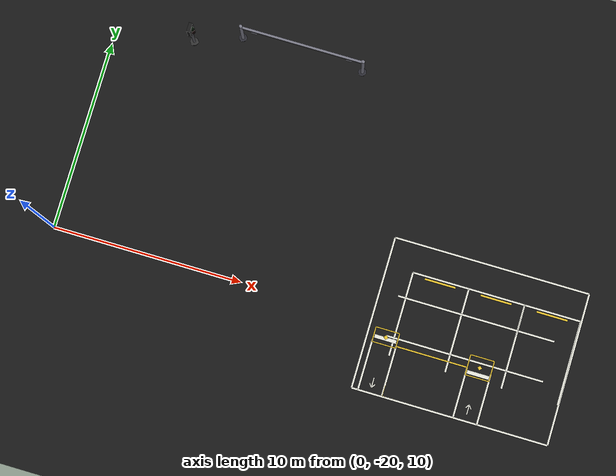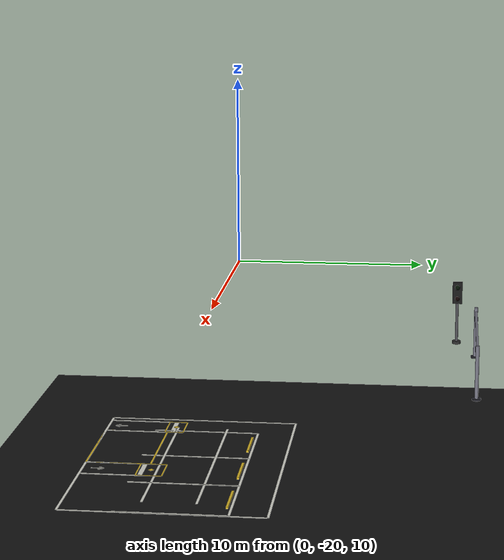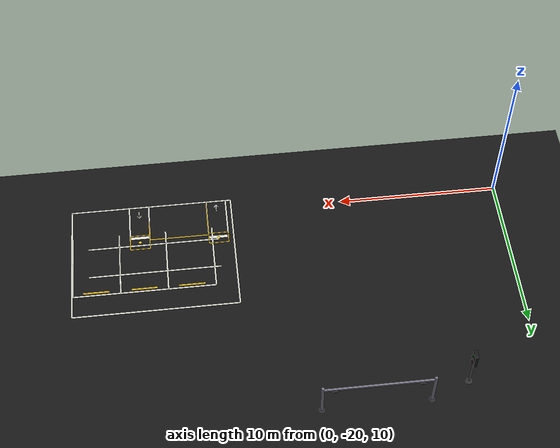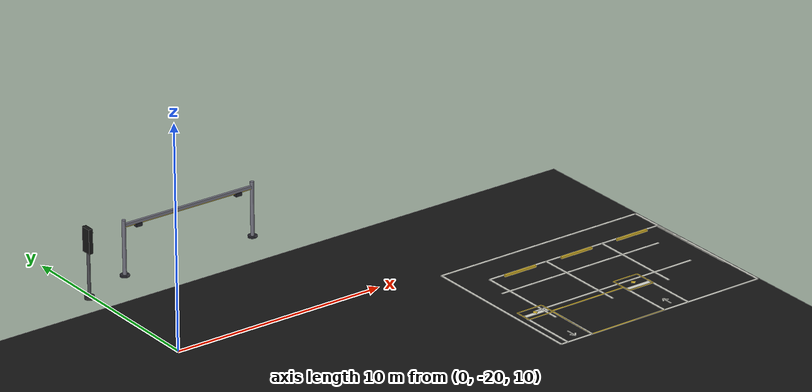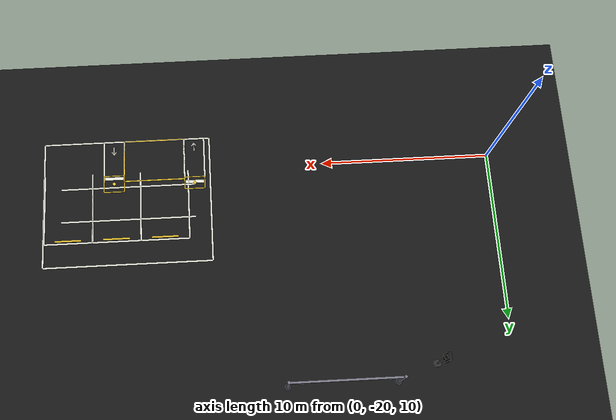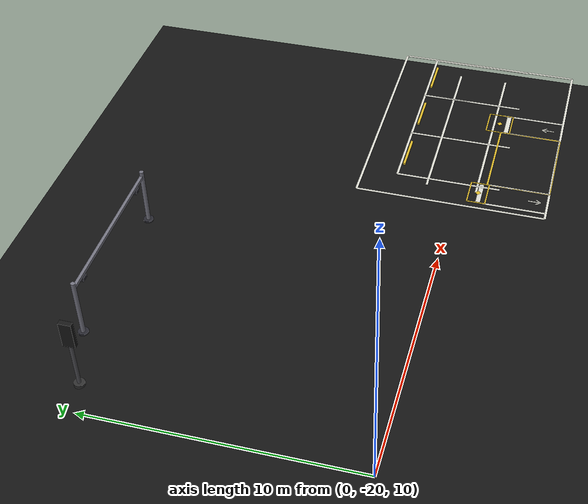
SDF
<sdf version="1.6">
 <world name="v2x_city_scene">
  <model name="ground_plane">
   <static>true</static>
   <link name="link">
    <collision name="collision">
     <geometry><plane><normal>0 0 1</normal><size>200 200</size></plane></geometry>
    </collision>
    <visual name="visual">
     <geometry><plane><normal>0 0 1</normal><size>200 200</size></plane></geometry>
     <material>
      <ambient>0.05 0.05 0.05 1</ambient>
      <diffuse>0.08 0.08 0.08 1</diffuse>
      <specular>0.0 0.0 0.0 1</specular>
     </material>
    </visual>
   </link>
  </model>
  <model name="tl_j1_ns_ped">
   <static>true</static>
   <pose>3.6 -8.0 6.7 0 0 1.5708</pose>
   <link name="link">
    <visual name="base_visual">
     <pose>0 0 0.07 0 0 0</pose>
     <geometry><cylinder><radius>0.22</radius><length>0.14</length></cylinder></geometry>
     <material><ambient>0.10 0.10 0.10 1</ambient><diffuse>0.18 0.18 0.18 1</diffuse></material>
    </visual>
    <visual name="pole_visual">
     <pose>0 0 1.45 0 0 0</pose>
     <geometry><cylinder><radius>0.075</radius><length>2.80</length></cylinder></geometry>
     <material><ambient>0.16 0.16 0.16 1</ambient><diffuse>0.30 0.30 0.32 1</diffuse></material>
    </visual>
    <visual name="housing_visual">
     <pose>0 0.02 2.75 0 0 0</pose>
     <geometry><box><size>0.50 0.20 1.15</size></box></geometry>
     <material><ambient>0.04 0.04 0.04 1</ambient><diffuse>0.09 0.09 0.09 1</diffuse></material>
    </visual>
    <visual name="red_hand">
     <pose>0 -0.11 2.45 0 0 0</pose>
     <geometry><sphere><radius>0.13</radius></sphere></geometry>
     <material><ambient>0.05 0 0 1</ambient><diffuse>0.05 0 0 1</diffuse><emissive>0.05 0 0 1</emissive></material>
    </visual>
    <visual name="green_walking">
     <pose>0 -0.11 3.05 0 0 0</pose>
     <geometry><sphere><radius>0.13</radius></sphere></geometry>
     <material><ambient>0 0.05 0 1</ambient><diffuse>0 0.05 0 1</diffuse><emissive>0 0.05 0 1</emissive></material>
    </visual>
    <collision name="pole_collision">
     <pose>0 0 1.45 0 0 0</pose>
     <geometry><cylinder><radius>0.10</radius><length>2.80</length></cylinder></geometry>
    </collision>
   </link>
   <plugin name="traffic_light_ped" filename="libv2x_traffic_light.so">
    <state_topic>traffic_light/J1_ns/pedestrian</state_topic>
    <link_name>link</link_name>
    <is_pedestrian>true</is_pedestrian>
   </plugin>
  </model>
  <model name="parking_stripes">
   <static>true</static>
   <pose>11.1500 -9.6500 6.7000 0.0000 0.0000 0.0000</pose>
   <link name="link">
    <visual name="s001">
     <pose>11.1500 -13.8000 0.0210 0 0 0.0000</pose>
     <geometry><box><size>10.7000 0.1000 0.0120</size></box></geometry>
     <material>
      <ambient>0.55 0.55 0.52 1</ambient>
      <diffuse>0.86 0.86 0.82 1</diffuse>
      <specular>0 0 0 1</specular>
      <emissive>0 0 0 1</emissive>
     </material>
    </visual>
    <visual name="s002">
     <pose>11.1500 -5.5000 0.0210 0 0 0.0000</pose>
     <geometry><box><size>10.7000 0.1000 0.0120</size></box></geometry>
     <material>
      <ambient>0.55 0.55 0.52 1</ambient>
      <diffuse>0.86 0.86 0.82 1</diffuse>
      <specular>0 0 0 1</specular>
      <emissive>0 0 0 1</emissive>
     </material>
    </visual>
    <visual name="s003">
     <pose>5.8000 -9.6500 0.0210 0 0 1.5708</pose>
     <geometry><box><size>8.3000 0.1000 0.0120</size></box></geometry>
     <material>
      <ambient>0.55 0.55 0.52 1</ambient>
      <diffuse>0.86 0.86 0.82 1</diffuse>
      <specular>0 0 0 1</specular>
      <emissive>0 0 0 1</emissive>
     </material>
    </visual>
    <visual name="s004">
     <pose>16.5000 -9.6500 0.0210 0 0 1.5708</pose>
     <geometry><box><size>8.3000 0.1000 0.0120</size></box></geometry>
     <material>
      <ambient>0.55 0.55 0.52 1</ambient>
      <diffuse>0.86 0.86 0.82 1</diffuse>
      <specular>0 0 0 1</specular>
      <emissive>0 0 0 1</emissive>
     </material>
    </visual>
    <visual name="s005">
     <pose>11.1000 -10.6500 0.0210 0 0 0.0000</pose>
     <geometry><box><size>8.6000 0.1000 0.0120</size></box></geometry>
     <material>
      <ambient>0.55 0.55 0.52 1</ambient>
      <diffuse>0.86 0.86 0.82 1</diffuse>
      <specular>0 0 0 1</specular>
      <emissive>0 0 0 1</emissive>
     </material>
    </visual>
    <visual name="s006">
     <pose>11.1000 -8.4500 0.0210 0 0 0.0000</pose>
     <geometry><box><size>8.6000 0.1000 0.0120</size></box></geometry>
     <material>
      <ambient>0.55 0.55 0.52 1</ambient>
      <diffuse>0.86 0.86 0.82 1</diffuse>
      <specular>0 0 0 1</specular>
      <emissive>0 0 0 1</emissive>
     </material>
    </visual>
    <visual name="s007">
     <pose>11.3500 -12.4250 0.0210 0 0 1.5708</pose>
     <geometry><box><size>2.7500 0.1000 0.0120</size></box></geometry>
     <material>
      <ambient>0.55 0.55 0.52 1</ambient>
      <diffuse>0.86 0.86 0.82 1</diffuse>
      <specular>0 0 0 1</specular>
      <emissive>0 0 0 1</emissive>
     </material>
    </visual>
    <visual name="s008">
     <pose>12.6500 -12.4250 0.0210 0 0 1.5708</pose>
     <geometry><box><size>2.7500 0.1000 0.0120</size></box></geometry>
     <material>
      <ambient>0.55 0.55 0.52 1</ambient>
      <diffuse>0.86 0.86 0.82 1</diffuse>
      <specular>0 0 0 1</specular>
      <emissive>0 0 0 1</emissive>
     </material>
    </visual>
    <visual name="s009">
     <pose>6.1500 -12.4250 0.0210 0 0 1.5708</pose>
     <geometry><box><size>2.7500 0.1000 0.0120</size></box></geometry>
     <material>
      <ambient>0.55 0.55 0.52 1</ambient>
      <diffuse>0.86 0.86 0.82 1</diffuse>
      <specular>0 0 0 1</specular>
      <emissive>0 0 0 1</emissive>
     </material>
    </visual>
    <visual name="s010">
     <pose>7.4500 -12.4250 0.0210 0 0 1.5708</pose>
     <geometry><box><size>2.7500 0.1000 0.0120</size></box></geometry>
     <material>
      <ambient>0.55 0.55 0.52 1</ambient>
      <diffuse>0.86 0.86 0.82 1</diffuse>
      <specular>0 0 0 1</specular>
      <emissive>0 0 0 1</emissive>
     </material>
    </visual>
    <visual name="s011">
     <pose>9.4000 -13.8000 0.0210 0 0 0.0000</pose>
     <geometry><box><size>3.9000 0.0800 0.0120</size></box></geometry>
     <material>
      <ambient>0.55 0.46 0.10 1</ambient>
      <diffuse>0.86 0.72 0.16 1</diffuse>
      <specular>0 0 0 1</specular>
      <emissive>0 0 0 1</emissive>
     </material>
    </visual>
    <visual name="s012">
     <pose>9.4000 -11.0500 0.0210 0 0 0.0000</pose>
     <geometry><box><size>3.9000 0.0800 0.0120</size></box></geometry>
     <material>
      <ambient>0.55 0.46 0.10 1</ambient>
      <diffuse>0.86 0.72 0.16 1</diffuse>
      <specular>0 0 0 1</specular>
      <emissive>0 0 0 1</emissive>
     </material>
    </visual>
    <visual name="s013">
     <pose>7.4500 -12.4250 0.0210 0 0 1.5708</pose>
     <geometry><box><size>2.7500 0.0800 0.0120</size></box></geometry>
     <material>
      <ambient>0.55 0.46 0.10 1</ambient>
      <diffuse>0.86 0.72 0.16 1</diffuse>
      <specular>0 0 0 1</specular>
      <emissive>0 0 0 1</emissive>
     </material>
    </visual>
    <visual name="s014">
     <pose>11.3500 -12.4250 0.0210 0 0 1.5708</pose>
     <geometry><box><size>2.7500 0.0800 0.0120</size></box></geometry>
     <material>
      <ambient>0.55 0.46 0.10 1</ambient>
      <diffuse>0.86 0.72 0.16 1</diffuse>
      <specular>0 0 0 1</specular>
      <emissive>0 0 0 1</emissive>
     </material>
    </visual>
    <visual name="s015">
     <pose>7.2250 -9.3300 0.0210 0 0 1.5708</pose>
     <geometry><box><size>4.6000 0.1000 0.0120</size></box></geometry>
     <material>
      <ambient>0.55 0.55 0.52 1</ambient>
      <diffuse>0.86 0.86 0.82 1</diffuse>
      <specular>0 0 0 1</specular>
      <emissive>0 0 0 1</emissive>
     </material>
    </visual>
    <visual name="s016">
     <pose>10.3050 -9.3300 0.0210 0 0 1.5708</pose>
     <geometry><box><size>4.6000 0.1000 0.0120</size></box></geometry>
     <material>
      <ambient>0.55 0.55 0.52 1</ambient>
      <diffuse>0.86 0.86 0.82 1</diffuse>
      <specular>0 0 0 1</specular>
      <emissive>0 0 0 1</emissive>
     </material>
    </visual>
    <visual name="s017">
     <pose>8.7650 -7.0300 0.0210 0 0 0.0000</pose>
     <geometry><box><size>3.0800 0.1000 0.0120</size></box></geometry>
     <material>
      <ambient>0.55 0.55 0.52 1</ambient>
      <diffuse>0.86 0.86 0.82 1</diffuse>
      <specular>0 0 0 1</specular>
      <emissive>0 0 0 1</emissive>
     </material>
    </visual>
    <visual name="s018">
     <pose>8.7650 -7.1900 0.0600 0 0 0.0000</pose>
     <geometry><box><size>1.6940 0.1000 0.0900</size></box></geometry>
     <material>
      <ambient>0.55 0.46 0.10 1</ambient>
      <diffuse>0.86 0.72 0.16 1</diffuse>
      <specular>0 0 0 1</specular>
      <emissive>0 0 0 1</emissive>
     </material>
    </visual>
    <visual name="s019">
     <pose>10.3050 -9.3300 0.0210 0 0 1.5708</pose>
     <geometry><box><size>4.6000 0.1000 0.0120</size></box></geometry>
     <material>
      <ambient>0.55 0.55 0.52 1</ambient>
      <diffuse>0.86 0.86 0.82 1</diffuse>
      <specular>0 0 0 1</specular>
      <emissive>0 0 0 1</emissive>
     </material>
    </visual>
    <visual name="s020">
     <pose>13.3750 -9.3300 0.0210 0 0 1.5708</pose>
     <geometry><box><size>4.6000 0.1000 0.0120</size></box></geometry>
     <material>
      <ambient>0.55 0.55 0.52 1</ambient>
      <diffuse>0.86 0.86 0.82 1</diffuse>
      <specular>0 0 0 1</specular>
      <emissive>0 0 0 1</emissive>
     </material>
    </visual>
    <visual name="s021">
     <pose>11.8400 -7.0300 0.0210 0 0 0.0000</pose>
     <geometry><box><size>3.0700 0.1000 0.0120</size></box></geometry>
     <material>
      <ambient>0.55 0.55 0.52 1</ambient>
      <diffuse>0.86 0.86 0.82 1</diffuse>
      <specular>0 0 0 1</specular>
      <emissive>0 0 0 1</emissive>
     </material>
    </visual>
    <visual name="s022">
     <pose>11.8400 -7.1900 0.0600 0 0 0.0000</pose>
     <geometry><box><size>1.6885 0.1000 0.0900</size></box></geometry>
     <material>
      <ambient>0.55 0.46 0.10 1</ambient>
      <diffuse>0.86 0.72 0.16 1</diffuse>
      <specular>0 0 0 1</specular>
      <emissive>0 0 0 1</emissive>
     </material>
    </visual>
    <visual name="s023">
     <pose>13.3775 -9.3300 0.0210 0 0 1.5708</pose>
     <geometry><box><size>4.6000 0.1000 0.0120</size></box></geometry>
     <material>
      <ambient>0.55 0.55 0.52 1</ambient>
      <diffuse>0.86 0.86 0.82 1</diffuse>
      <specular>0 0 0 1</specular>
      <emissive>0 0 0 1</emissive>
     </material>
    </visual>
    <visual name="s024">
     <pose>16.4525 -9.3300 0.0210 0 0 1.5708</pose>
     <geometry><box><size>4.6000 0.1000 0.0120</size></box></geometry>
     <material>
      <ambient>0.55 0.55 0.52 1</ambient>
      <diffuse>0.86 0.86 0.82 1</diffuse>
      <specular>0 0 0 1</specular>
      <emissive>0 0 0 1</emissive>
     </material>
    </visual>
    <visual name="s025">
     <pose>14.9150 -7.0300 0.0210 0 0 0.0000</pose>
     <geometry><box><size>3.0750 0.1000 0.0120</size></box></geometry>
     <material>
      <ambient>0.55 0.55 0.52 1</ambient>
      <diffuse>0.86 0.86 0.82 1</diffuse>
      <specular>0 0 0 1</specular>
      <emissive>0 0 0 1</emissive>
     </material>
    </visual>
    <visual name="s026">
     <pose>14.9150 -7.1900 0.0600 0 0 0.0000</pose>
     <geometry><box><size>1.6913 0.1000 0.0900</size></box></geometry>
     <material>
      <ambient>0.55 0.46 0.10 1</ambient>
      <diffuse>0.86 0.72 0.16 1</diffuse>
      <specular>0 0 0 1</specular>
      <emissive>0 0 0 1</emissive>
     </material>
    </visual>
    <visual name="s027">
     <pose>12.0000 -11.2700 0.0210 0 0 0.0000</pose>
     <geometry><box><size>1.2000 0.2000 0.0120</size></box></geometry>
     <material>
      <ambient>0.55 0.55 0.52 1</ambient>
      <diffuse>0.86 0.86 0.82 1</diffuse>
      <specular>0 0 0 1</specular>
      <emissive>0 0 0 1</emissive>
     </material>
    </visual>
    <visual name="s028">
     <pose>6.8000 -10.8300 0.0210 0 0 0.0000</pose>
     <geometry><box><size>1.2000 0.2000 0.0120</size></box></geometry>
     <material>
      <ambient>0.55 0.55 0.52 1</ambient>
      <diffuse>0.86 0.86 0.82 1</diffuse>
      <specular>0 0 0 1</specular>
      <emissive>0 0 0 1</emissive>
     </material>
    </visual>
    <visual name="s029">
     <pose>12.0000 -11.4500 0.0250 0 0 0.0000</pose>
     <geometry><box><size>1.3000 0.0600 0.0120</size></box></geometry>
     <material>
      <ambient>0.55 0.46 0.10 1</ambient>
      <diffuse>0.86 0.72 0.16 1</diffuse>
      <specular>0 0 0 1</specular>
      <emissive>0 0 0 1</emissive>
     </material>
    </visual>
    <visual name="s030">
     <pose>12.0000 -10.3500 0.0250 0 0 0.0000</pose>
     <geometry><box><size>1.3000 0.0600 0.0120</size></box></geometry>
     <material>
      <ambient>0.55 0.46 0.10 1</ambient>
      <diffuse>0.86 0.72 0.16 1</diffuse>
      <specular>0 0 0 1</specular>
      <emissive>0 0 0 1</emissive>
     </material>
    </visual>
    <visual name="s031">
     <pose>11.3500 -10.9000 0.0250 0 0 1.5708</pose>
     <geometry><box><size>1.1000 0.0600 0.0120</size></box></geometry>
     <material>
      <ambient>0.55 0.46 0.10 1</ambient>
      <diffuse>0.86 0.72 0.16 1</diffuse>
      <specular>0 0 0 1</specular>
      <emissive>0 0 0 1</emissive>
     </material>
    </visual>
    <visual name="s032">
     <pose>12.6500 -10.9000 0.0250 0 0 1.5708</pose>
     <geometry><box><size>1.1000 0.0600 0.0120</size></box></geometry>
     <material>
      <ambient>0.55 0.46 0.10 1</ambient>
      <diffuse>0.86 0.72 0.16 1</diffuse>
      <specular>0 0 0 1</specular>
      <emissive>0 0 0 1</emissive>
     </material>
    </visual>
    <visual name="s033">
     <pose>12.0000 -10.9000 0.0260 0 0 0.7854</pose>
     <geometry><box><size>0.1800 0.1800 0.0140</size></box></geometry>
     <material>
      <ambient>0.55 0.46 0.10 1</ambient>
      <diffuse>0.86 0.72 0.16 1</diffuse>
      <specular>0 0 0 1</specular>
      <emissive>0 0 0 1</emissive>
     </material>
    </visual>
    <visual name="s034">
     <pose>6.8000 -11.1500 0.0250 0 0 0.0000</pose>
     <geometry><box><size>1.3000 0.0600 0.0120</size></box></geometry>
     <material>
      <ambient>0.55 0.46 0.10 1</ambient>
      <diffuse>0.86 0.72 0.16 1</diffuse>
      <specular>0 0 0 1</specular>
      <emissive>0 0 0 1</emissive>
     </material>
    </visual>
    <visual name="s035">
     <pose>6.8000 -10.3500 0.0250 0 0 0.0000</pose>
     <geometry><box><size>1.3000 0.0600 0.0120</size></box></geometry>
     <material>
      <ambient>0.55 0.46 0.10 1</ambient>
      <diffuse>0.86 0.72 0.16 1</diffuse>
      <specular>0 0 0 1</specular>
      <emissive>0 0 0 1</emissive>
     </material>
    </visual>
    <visual name="s036">
     <pose>6.1500 -10.7500 0.0250 0 0 1.5708</pose>
     <geometry><box><size>0.8000 0.0600 0.0120</size></box></geometry>
     <material>
      <ambient>0.55 0.46 0.10 1</ambient>
      <diffuse>0.86 0.72 0.16 1</diffuse>
      <specular>0 0 0 1</specular>
      <emissive>0 0 0 1</emissive>
     </material>
    </visual>
    <visual name="s037">
     <pose>7.4500 -10.7500 0.0250 0 0 1.5708</pose>
     <geometry><box><size>0.8000 0.0600 0.0120</size></box></geometry>
     <material>
      <ambient>0.55 0.46 0.10 1</ambient>
      <diffuse>0.86 0.72 0.16 1</diffuse>
      <specular>0 0 0 1</specular>
      <emissive>0 0 0 1</emissive>
     </material>
    </visual>
    <visual name="s038">
     <pose>6.8000 -10.7500 0.0260 0 0 0.7854</pose>
     <geometry><box><size>0.1800 0.1800 0.0140</size></box></geometry>
     <material>
      <ambient>0.55 0.46 0.10 1</ambient>
      <diffuse>0.86 0.72 0.16 1</diffuse>
      <specular>0 0 0 1</specular>
      <emissive>0 0 0 1</emissive>
     </material>
    </visual>
    <visual name="s039">
     <pose>12.0000 -13.1750 0.0210 0 0 1.5708</pose>
     <geometry><box><size>0.5500 0.0600 0.0120</size></box></geometry>
     <material>
      <ambient>0.55 0.55 0.52 1</ambient>
      <diffuse>0.86 0.86 0.82 1</diffuse>
      <specular>0 0 0 1</specular>
      <emissive>0 0 0 1</emissive>
     </material>
    </visual>
    <visual name="s040">
     <pose>12.0746 -13.0065 0.0210 0 0 -0.9599</pose>
     <geometry><box><size>0.2600 0.0600 0.0120</size></box></geometry>
     <material>
      <ambient>0.55 0.55 0.52 1</ambient>
      <diffuse>0.86 0.86 0.82 1</diffuse>
      <specular>0 0 0 1</specular>
      <emissive>0 0 0 1</emissive>
     </material>
    </visual>
    <visual name="s041">
     <pose>11.9254 -13.0065 0.0210 0 0 4.1015</pose>
     <geometry><box><size>0.2600 0.0600 0.0120</size></box></geometry>
     <material>
      <ambient>0.55 0.55 0.52 1</ambient>
      <diffuse>0.86 0.86 0.82 1</diffuse>
      <specular>0 0 0 1</specular>
      <emissive>0 0 0 1</emissive>
     </material>
    </visual>
    <visual name="s042">
     <pose>6.8000 -13.2250 0.0210 0 0 -1.5708</pose>
     <geometry><box><size>0.5500 0.0600 0.0120</size></box></geometry>
     <material>
      <ambient>0.55 0.55 0.52 1</ambient>
      <diffuse>0.86 0.86 0.82 1</diffuse>
      <specular>0 0 0 1</specular>
      <emissive>0 0 0 1</emissive>
     </material>
    </visual>
    <visual name="s043">
     <pose>6.7254 -13.3935 0.0210 0 0 -4.1015</pose>
     <geometry><box><size>0.2600 0.0600 0.0120</size></box></geometry>
     <material>
      <ambient>0.55 0.55 0.52 1</ambient>
      <diffuse>0.86 0.86 0.82 1</diffuse>
      <specular>0 0 0 1</specular>
      <emissive>0 0 0 1</emissive>
     </material>
    </visual>
    <visual name="s044">
     <pose>6.8746 -13.3935 0.0210 0 0 0.9599</pose>
     <geometry><box><size>0.2600 0.0600 0.0120</size></box></geometry>
     <material>
      <ambient>0.55 0.55 0.52 1</ambient>
      <diffuse>0.86 0.86 0.82 1</diffuse>
      <specular>0 0 0 1</specular>
      <emissive>0 0 0 1</emissive>
     </material>
    </visual>
   </link>
  </model>
  <model name="parking_gantry">
   <static>true</static>
   <pose>9.4000 -7.0500 6.7000 0.0000 0.0000 0.0000</pose>
   <link name="link">
    <visual name="mast1">
     <pose>-3.3500 0.0000 1.3250 0.0000 0.0000 0.0000</pose>
     <geometry><cylinder><radius>0.0900</radius><length>2.6500</length></cylinder></geometry>
     <material>
      <ambient>0.25 0.25 0.28 1</ambient>
      <diffuse>0.45 0.45 0.50 1</diffuse>
      <specular>0 0 0 1</specular>
      <emissive>0 0 0 1</emissive>
     </material>
    </visual>
    <collision name="mast1_col">
     <pose>-3.3500 0.0000 1.3250 0.0000 0.0000 0.0000</pose>
     <geometry><cylinder><radius>0.0900</radius><length>2.6500</length></cylinder></geometry>
    </collision>
    <visual name="mast1_base">
     <pose>-3.3500 0.0000 0.0400 0.0000 0.0000 0.0000</pose>
     <geometry><cylinder><radius>0.2160</radius><length>0.0800</length></cylinder></geometry>
     <material>
      <ambient>0.05 0.05 0.06 1</ambient>
      <diffuse>0.15 0.15 0.18 1</diffuse>
      <specular>0 0 0 1</specular>
      <emissive>0 0 0 1</emissive>
     </material>
    </visual>
    <visual name="mast2">
     <pose>3.3500 0.0000 1.3250 0.0000 0.0000 0.0000</pose>
     <geometry><cylinder><radius>0.0900</radius><length>2.6500</length></cylinder></geometry>
     <material>
      <ambient>0.25 0.25 0.28 1</ambient>
      <diffuse>0.45 0.45 0.50 1</diffuse>
      <specular>0 0 0 1</specular>
      <emissive>0 0 0 1</emissive>
     </material>
    </visual>
    <collision name="mast2_col">
     <pose>3.3500 0.0000 1.3250 0.0000 0.0000 0.0000</pose>
     <geometry><cylinder><radius>0.0900</radius><length>2.6500</length></cylinder></geometry>
    </collision>
    <visual name="mast2_base">
     <pose>3.3500 0.0000 0.0400 0.0000 0.0000 0.0000</pose>
     <geometry><cylinder><radius>0.2160</radius><length>0.0800</length></cylinder></geometry>
     <material>
      <ambient>0.05 0.05 0.06 1</ambient>
      <diffuse>0.15 0.15 0.18 1</diffuse>
      <specular>0 0 0 1</specular>
      <emissive>0 0 0 1</emissive>
     </material>
    </visual>
    <visual name="beam">
     <pose>0.0000 0.0000 2.4000 0.0000 0.0000 0.0000</pose>
     <geometry><box><size>6.7000 0.1200 0.1400</size></box></geometry>
     <material>
      <ambient>0.25 0.25 0.28 1</ambient>
      <diffuse>0.45 0.45 0.50 1</diffuse>
      <specular>0 0 0 1</specular>
      <emissive>0 0 0 1</emissive>
     </material>
    </visual>
    <visual name="beam_trim">
     <pose>0.0000 0.0000 2.3100 0.0000 0.0000 0.0000</pose>
     <geometry><box><size>6.7000 0.0720 0.0400</size></box></geometry>
     <material>
      <ambient>0.55 0.46 0.10 1</ambient>
      <diffuse>0.86 0.72 0.16 1</diffuse>
      <specular>0 0 0 1</specular>
      <emissive>0 0 0 1</emissive>
     </material>
    </visual>
    <sensor name="gate_camera_in" type="camera">
     <pose>2.6000 0.0000 2.2500 0.0000 0.4500 -1.5708</pose>
     <always_on>true</always_on>
     <update_rate>10</update_rate>
     <visualize>false</visualize>
     <camera name="gate_in">
      <horizontal_fov>0.6000</horizontal_fov>
      <image><width>1920</width><height>1080</height><format>R8G8B8</format></image>
      <clip><near>0.0500</near><far>40.0000</far></clip>
     </camera>
     <plugin name="gazebo_ros_camera_gate_in" filename="libgazebo_ros_camera.so">
      <ros><namespace>/parking</namespace></ros>
      <camera_name>gate_in</camera_name>
      <frame_name>gate_in/camera_link</frame_name>
     </plugin>
     <plugin name="v2x_gate" filename="libv2x_gate.so">
      <gate_id>gate_in</gate_id>
      <capture_dir>/tmp/v2x_parking_in</capture_dir>
      <focus>12.0000 -11.2100 6.8500</focus>
      <near_radius>1.4000</near_radius>
      <far_radius>2.5000</far_radius>
      <frame_wait>3.0000</frame_wait>
      <rearm_on_fail>true</rearm_on_fail>
      <render_lag>0.0000</render_lag>
      <vehicle_prefix>car_</vehicle_prefix>
      <chassis_link>chassis</chassis_link>
      <image_format>R8G8B8</image_format>
     </plugin>
    </sensor>
    <visual name="cambox_in">
     <pose>2.6000 0.0000 2.2500 0.0000 0.0000 0.0000</pose>
     <geometry><box><size>0.3000 0.2000 0.1600</size></box></geometry>
     <material>
      <ambient>0.05 0.05 0.06 1</ambient>
      <diffuse>0.15 0.15 0.18 1</diffuse>
      <specular>0 0 0 1</specular>
      <emissive>0 0 0 1</emissive>
     </material>
    </visual>
    <sensor name="gate_camera_out" type="camera">
     <pose>-2.6000 0.0000 2.2500 0.0000 0.7880 -1.5708</pose>
     <always_on>true</always_on>
     <update_rate>10</update_rate>
     <visualize>false</visualize>
     <camera name="gate_out">
      <horizontal_fov>0.6000</horizontal_fov>
      <image><width>1920</width><height>1080</height><format>R8G8B8</format></image>
      <clip><near>0.0500</near><far>40.0000</far></clip>
     </camera>
     <plugin name="gazebo_ros_camera_gate_out" filename="libgazebo_ros_camera.so">
      <ros><namespace>/parking</namespace></ros>
      <camera_name>gate_out</camera_name>
      <frame_name>gate_out/camera_link</frame_name>
     </plugin>
     <plugin name="v2x_gate" filename="libv2x_gate.so">
      <gate_id>gate_out</gate_id>
      <capture_dir>/tmp/v2x_parking_out</capture_dir>
      <focus>6.8000 -10.9500 6.8500</focus>
      <near_radius>1.4000</near_radius>
      <far_radius>2.5000</far_radius>
      <frame_wait>3.0000</frame_wait>
      <rearm_on_fail>true</rearm_on_fail>
      <render_lag>0.0000</render_lag>
      <vehicle_prefix>car_</vehicle_prefix>
      <chassis_link>chassis</chassis_link>
      <image_format>R8G8B8</image_format>
     </plugin>
    </sensor>
    <visual name="cambox_out">
     <pose>-2.6000 0.0000 2.2500 0.0000 0.0000 0.0000</pose>
     <geometry><box><size>0.3000 0.2000 0.1600</size></box></geometry>
     <material>
      <ambient>0.05 0.05 0.06 1</ambient>
      <diffuse>0.15 0.15 0.18 1</diffuse>
      <specular>0 0 0 1</specular>
      <emissive>0 0 0 1</emissive>
     </material>
    </visual>
   </link>
  </model>
 </world>
</sdf>
